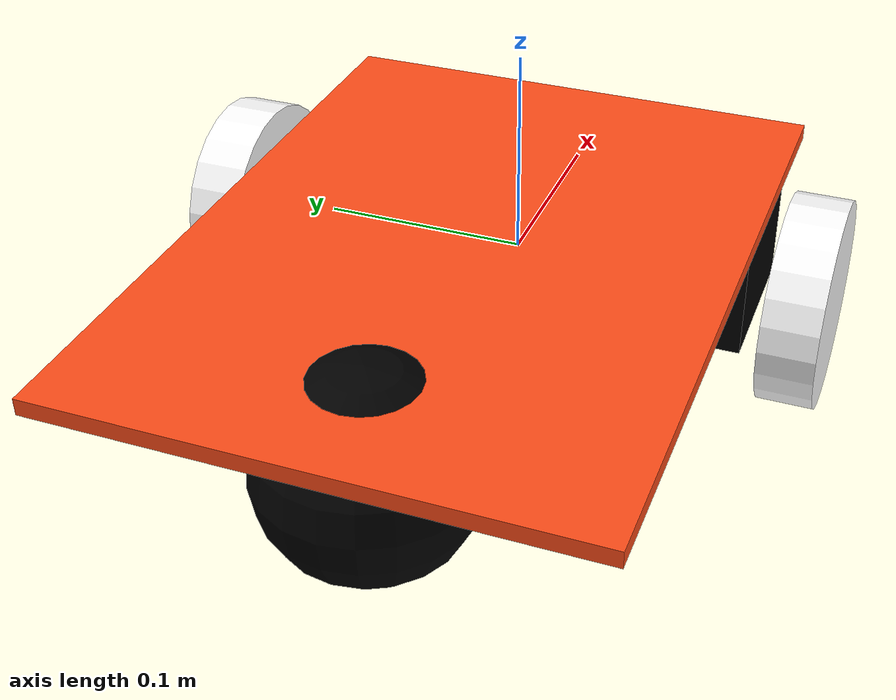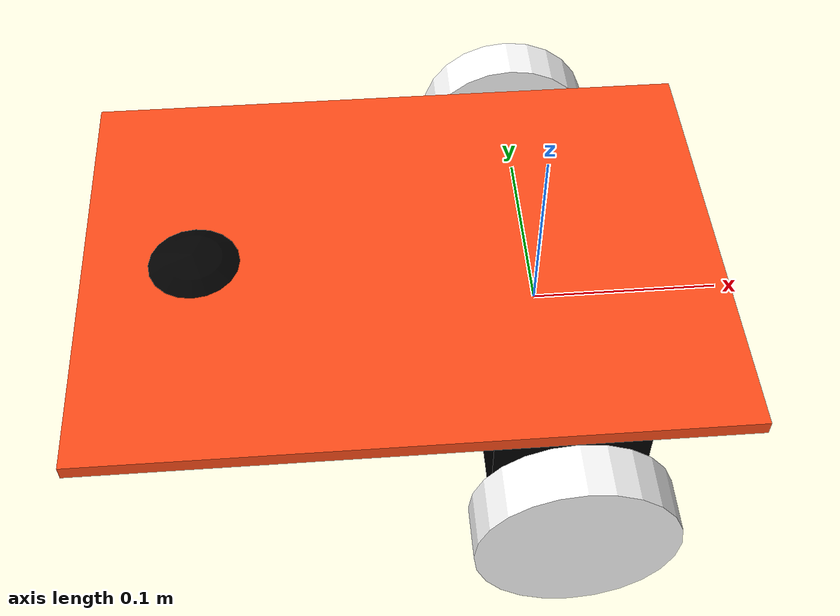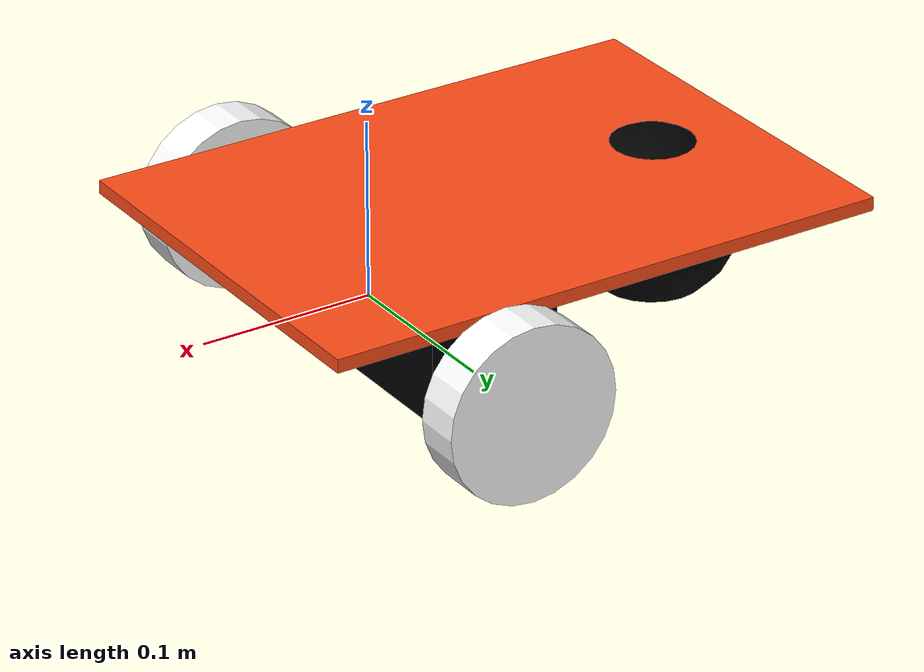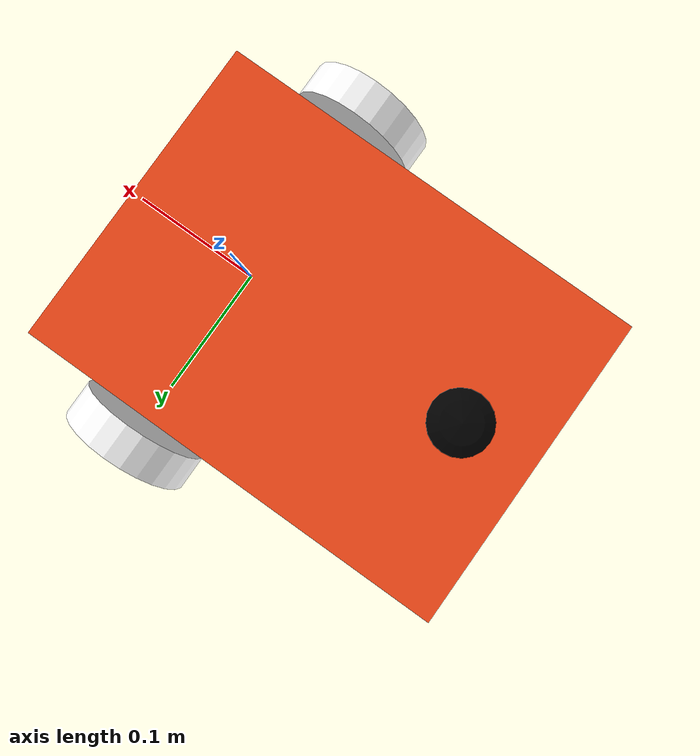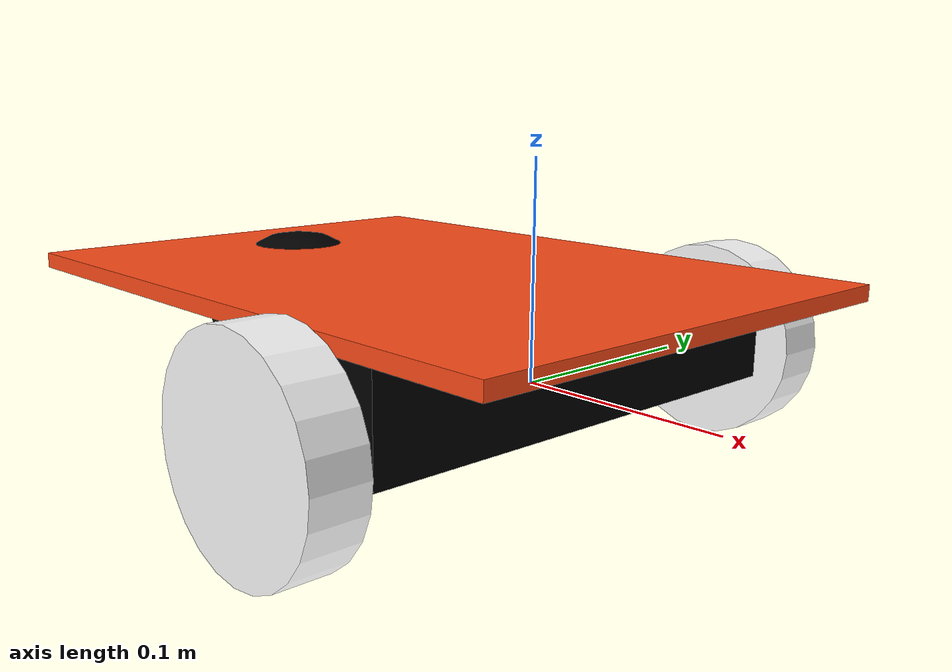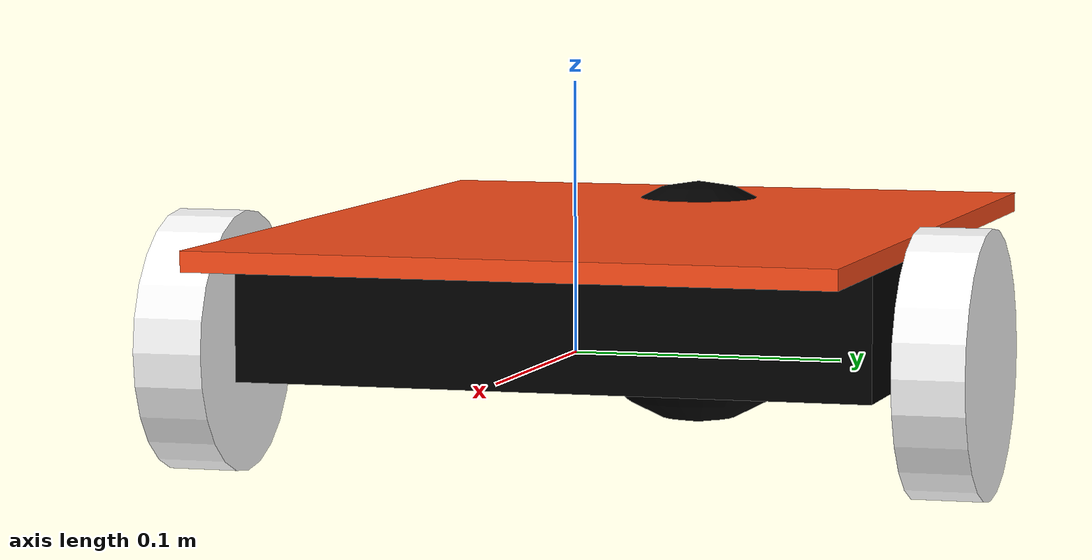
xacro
<?xml version="1.0"?>
<robot xmlns:xacro="http://www.ros.org/wiki/xacro"  name="robot">

    <xacro:include filename="inertial_macros.xacro" />

    <material name="white">
        <color rgba="1 1 1 1"/>
    </material>

    <material name="orange">
        <color rgba="1 0.3 0.1 1"/>
    </material>

    <material name="blue">
        <color rgba="0.2 0.2 1 1"/>
    </material>

    <material name="black">
        <color rgba="0 0 0 1"/>
    </material>

    <material name="red">
        <color rgba="1 0 0 1"/>
    </material>

    <link name="base_link">
    </link>

   <!-- Wheelbase -->

    <joint name="wheelbase_joint" type="fixed">
        <parent link="base_link"/>
        <child link="wheelbase"/>
        <origin xyz="0 0 0.0121"/>
    </joint>

    <link name="wheelbase">
        <visual>
            <origin xyz="0 0 0" rpy="0 0 0"/>
            <geometry>
                <box size="0.075 0.24 0.046"/>
            </geometry>
            <material name="black"/>
        </visual>
        <collision>
            <origin xyz="0 0 0" rpy="0 0 0"/>
            <geometry>
                <box size="0.075 0.24 0.046"/>
            </geometry>
        </collision>
        <xacro:inertial_box mass="0.5" x="0.075" y="0.24" z="0.046">
            <origin xyz="0 0 0" rpy="0 0 0"/>
        </xacro:inertial_box>
    </link>

    <gazebo reference="wheelbase">
        <material>Gazebo/Black</material>
    </gazebo>

    <!-- CHASSIS -->

    <joint name="chassis_joint" type="fixed">
        <parent link="wheelbase"/>
        <child link="chassis"/>
        <origin xyz="-0.0725 0 0.02685"/>
    </joint>

    <link name="chassis">
        <visual>
            <origin xyz="0 0 0" rpy="0 0 0"/>
            <geometry>
                <box size="0.33 0.24 0.0077"/>
            </geometry>
            <material name="orange"/>
        </visual>
        <collision>
            <origin xyz="0 0 0" rpy="0 0 0"/>
            <geometry>
                <box size="0.33 0.24 0.0077"/>
            </geometry>
        </collision>
        <xacro:inertial_box mass="1.027" x="0.33" y="0.24" z="0.0077">
            <origin xyz="0 0 0" rpy="0 0 0"/>
        </xacro:inertial_box>
    </link>

    <gazebo reference="chassis">
        <material>Gazebo/Orange</material>
    </gazebo>

    <!-- RIGHT WHEEL -->

    <joint name="right_wheel_joint" type="revolute">
        <parent link="base_link"/>
        <child link="right_wheel"/>
        <origin xyz="0 -0.1425 0" rpy="${pi/2} 0 0"/>
        <axis xyz="0 0 -1"/>
    </joint>

    <link name="right_wheel">
        <visual>
            <origin xyz="0 0 0" rpy="0 0 0"/>
            <geometry>
                <cylinder length="0.0265" radius="0.0495" />
            </geometry>
        <material name="white"/>
        </visual>
        <collision>
            <geometry>
                <cylinder length="0.0265" radius="0.0495" />
            </geometry>
        </collision>
        <xacro:inertial_cylinder mass="0.134" length="0.0265" radius="0.0495">
            <origin xyz="0 0 0" rpy="0 0 0"/>
        </xacro:inertial_cylinder>
    </link>

    <gazebo reference="right_wheel">
        <material>Gazebo/White</material>
    </gazebo>

	<!-- LEFT WHEEL -->
    <joint name="left_wheel_joint" type="revolute">
        <parent link="base_link"/>
        <child link="left_wheel"/>
        <origin xyz="0 0.1425 0" rpy="${pi/2} 0 0"/>
        <axis xyz="0 0 1"/>
    </joint>

    <link name="left_wheel">
        <visual>
            <origin xyz="0 0 0" rpy="0 0 0"/>
            <geometry>
                <cylinder length="0.0265" radius="0.0495" />
            </geometry>
        <material name="white"/>
        </visual>
        <collision>
            <geometry>
                <cylinder length="0.0265" radius="0.0495" />
            </geometry>
        </collision>
        <xacro:inertial_cylinder mass="0.134" length="0.0265" radius="0.0495">
            <origin xyz="0 0 0" rpy="0 0 0"/>
        </xacro:inertial_cylinder>
    </link>

    <gazebo reference="left_wheel">
        <material>Gazebo/White</material>
    </gazebo>

    <!-- CASTER WHEEL -->

    <joint name="caster_wheel_joint" type="fixed">
        <parent link="base_link"/>
        <child link="caster_wheel"/>
        <origin xyz="-0.18 0 0" rpy="0 0 0"/>
    </joint>

    <link name="caster_wheel">
        <visual>
            <geometry>
                <sphere radius="0.0495" />
            </geometry>
            <material name="black"/>
        </visual>
        <collision>
            <geometry>
                <sphere radius="0.0495" />
            </geometry>
        </collision>
        <xacro:inertial_sphere mass="0.2" radius="0.0495">
            <origin xyz="0 0 0" rpy="0 0 0"/>
        </xacro:inertial_sphere>
    </link>

    <gazebo reference="caster_wheel">
        <material>Gazebo/Black</material>
        <mu1 value="0.001"/>
        <mu2 value="0.001"/>
    </gazebo>

</robot>
